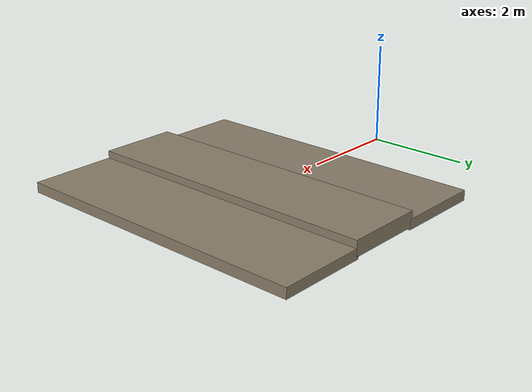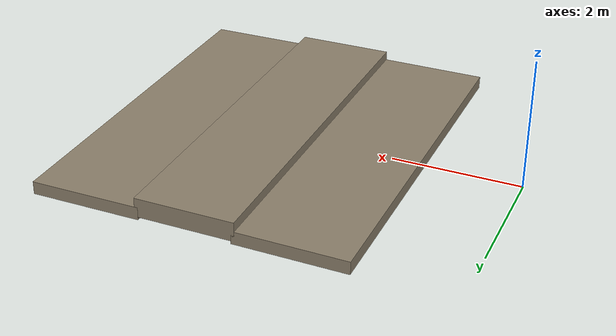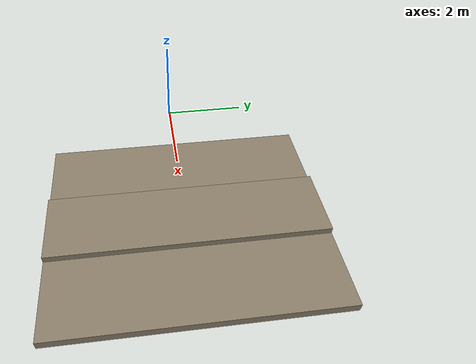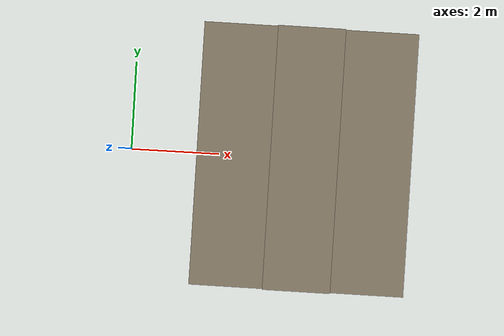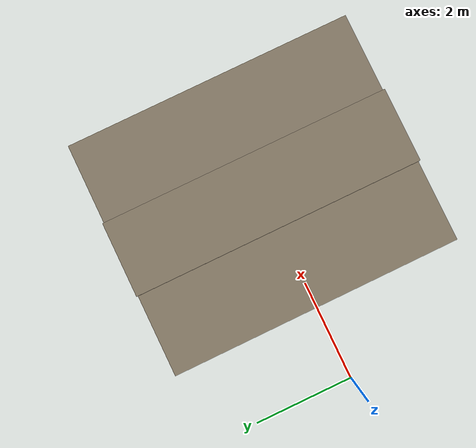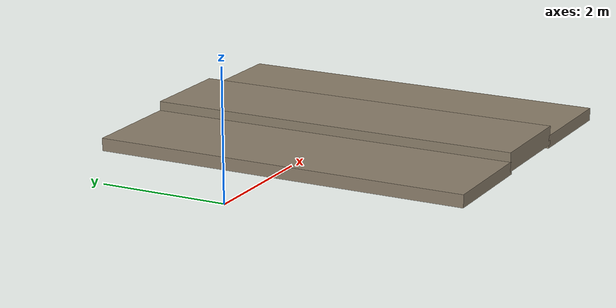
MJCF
<mujoco model="terrain slope_10deg">
  <!-- 10 degree ramp up to 0.3 m and down (scripts/make_terrain_benchmark.py) -->
  <asset>
    <material name="terrain" rgba="0.55 0.5 0.42 1"/>
  </asset>
  <worldbody>
    <geom name="ramp0" type="box" pos="2.3681 0.0000 0.0515" size="0.8638 3.0000 0.1000" euler="0.00000 -0.17453 0.00000" material="terrain" contype="1" conaffinity="1" condim="3" friction="1.0 0.5 0.1"/>
    <geom name="ramp1" type="box" pos="5.5347 0.0000 0.0515" size="0.8638 3.0000 0.1000" euler="0.00000 0.17453 0.00000" material="terrain" contype="1" conaffinity="1" condim="3" friction="1.0 0.5 0.1"/>
    <geom name="ramp_top" type="box" pos="3.9514 0.0000 0.1500" size="0.7700 3.0000 0.1500" material="terrain" contype="1" conaffinity="1" condim="3" friction="1.0 0.5 0.1"/>
  </worldbody>
</mujoco>
